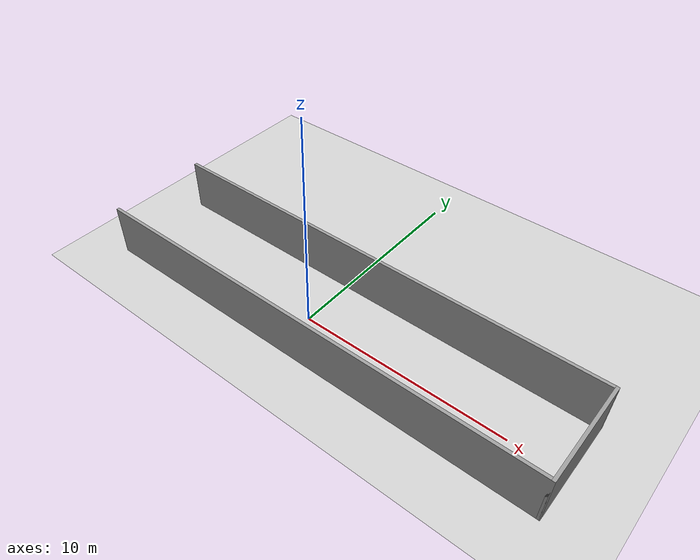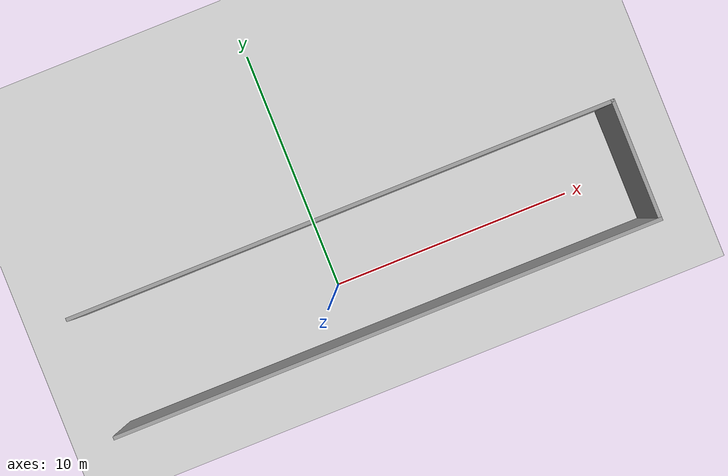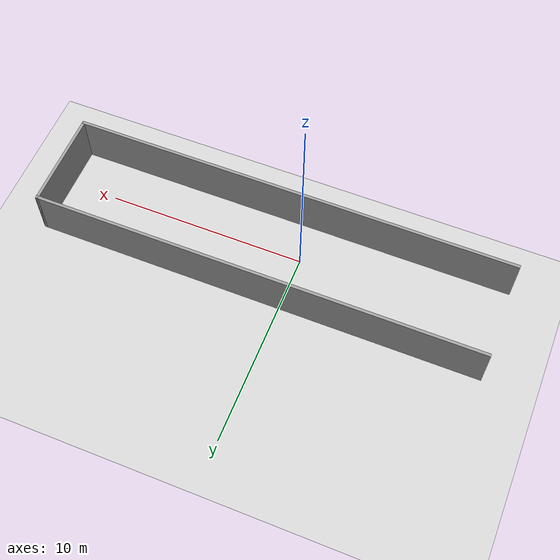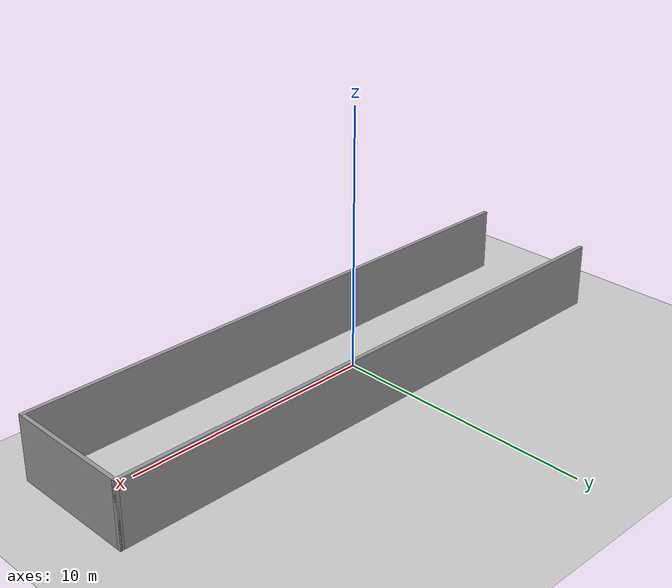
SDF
<sdf version='1.6'>
  <world name='default'>
    <include>
      <uri>model://ground_plane</uri>
    </include>

    <include>
      <uri>model://sun</uri>
    </include>

    <model name='white-wall'>
      <pose frame=''>1.265 0.315 0 0 -0 0</pose>
      <link name='Wall_0'>
        <collision name='Wall_0_Collision'>
          <geometry>
            <box>
              <size>22.5 0.15 2.5</size>
            </box>
          </geometry>
          <pose frame=''>0 0 1.25 0 -0 0</pose>
          <max_contacts>10</max_contacts>
          <surface>
            <contact>
              <ode/>
            </contact>
            <bounce/>
            <friction>
              <torsional>
                <ode/>
              </torsional>
              <ode/>
            </friction>
          </surface>
        </collision>
        <visual name='Wall_0_Visual'>
          <pose frame=''>0 0 1.25 0 -0 0</pose>
          <geometry>
            <box>
              <size>22.5 0.15 2.5</size>
            </box>
          </geometry>
          <material>
            <script>
              <uri>file://media/materials/scripts/gazebo.material</uri>
              <name>Gazebo/Grey</name>
            </script>
            <ambient>1 1 1 1</ambient>
          </material>
          <meta>
            <layer>0</layer>
          </meta>
        </visual>
        <pose frame=''>-0 -2.425 0 0 -0 0</pose>
        <self_collide>0</self_collide>
        <enable_wind>0</enable_wind>
        <kinematic>0</kinematic>
      </link>

      <link name='Wall_3'>
        <collision name='Wall_3_Collision'>
          <geometry>
            <box>
              <size>5 0.15 2.5</size>
            </box>
          </geometry>
          <pose frame=''>0 0 1.25 0 -0 0</pose>
          <max_contacts>10</max_contacts>
          <surface>
            <contact>
              <ode/>
            </contact>
            <bounce/>
            <friction>
              <torsional>
                <ode/>
              </torsional>
              <ode/>
            </friction>
          </surface>
        </collision>
        <visual name='Wall_3_Visual'>
          <pose frame=''>0 0 1.25 0 -0 0</pose>
          <geometry>
            <box>
              <size>5 0.15 2.5</size>
            </box>
          </geometry>
          <material>
            <script>
              <uri>file://media/materials/scripts/gazebo.material</uri>
              <name>Gazebo/Grey</name>
            </script>
            <ambient>1 1 1 1</ambient>
          </material>
          <meta>
            <layer>0</layer>
          </meta>
        </visual>
        <pose frame=''>11.175 -0 0 0 -0 1.5708</pose>
        <self_collide>0</self_collide>
        <enable_wind>0</enable_wind>
        <kinematic>0</kinematic>
      </link>
      <link name='Wall_4'>
        <collision name='Wall_4_Collision'>
          <geometry>
            <box>
              <size>0.15 0.15 2.5</size>
            </box>
          </geometry>
          <pose frame=''>0 0 1.25 0 -0 0</pose>
          <max_contacts>10</max_contacts>
          <surface>
            <contact>
              <ode/>
            </contact>
            <bounce/>
            <friction>
              <torsional>
                <ode/>
              </torsional>
              <ode/>
            </friction>
          </surface>
        </collision>
        <visual name='Wall_4_Visual'>
          <pose frame=''>0 0 1.25 0 -0 0</pose>
          <geometry>
            <box>
              <size>0.15 0.15 2.5</size>
            </box>
          </geometry>
          <material>
            <script>
              <uri>file://media/materials/scripts/gazebo.material</uri>
              <name>Gazebo/Grey</name>
            </script>
            <ambient>1 1 1 1</ambient>
          </material>
          <meta>
            <layer>0</layer>
          </meta>
        </visual>
        <pose frame=''>11.175 2.425 0 0 -0 0</pose>
        <self_collide>0</self_collide>
        <enable_wind>0</enable_wind>
        <kinematic>0</kinematic>
      </link>
      <link name='Wall_6'>
        <collision name='Wall_6_Collision'>
          <geometry>
            <box>
              <size>22.5 0.15 2.5</size>
            </box>
          </geometry>
          <pose frame=''>0 0 1.25 0 -0 0</pose>
          <max_contacts>10</max_contacts>
          <surface>
            <contact>
              <ode/>
            </contact>
            <bounce/>
            <friction>
              <torsional>
                <ode/>
              </torsional>
              <ode/>
            </friction>
          </surface>
        </collision>
        <visual name='Wall_6_Visual'>
          <pose frame=''>0 0 1.25 0 -0 0</pose>
          <geometry>
            <box>
              <size>22.5 0.15 2.5</size>
            </box>
          </geometry>
          <material>
            <script>
              <uri>file://media/materials/scripts/gazebo.material</uri>
              <name>Gazebo/Grey</name>
            </script>
            <ambient>1 1 1 1</ambient>
          </material>
          <meta>
            <layer>0</layer>
          </meta>
        </visual>
        <pose frame=''>-0 2.425 0 0 -0 3.14159</pose>
        <self_collide>0</self_collide>
        <enable_wind>0</enable_wind>
        <kinematic>0</kinematic>
      </link>
      <static>1</static>
    </model>

  </world>
</sdf>
